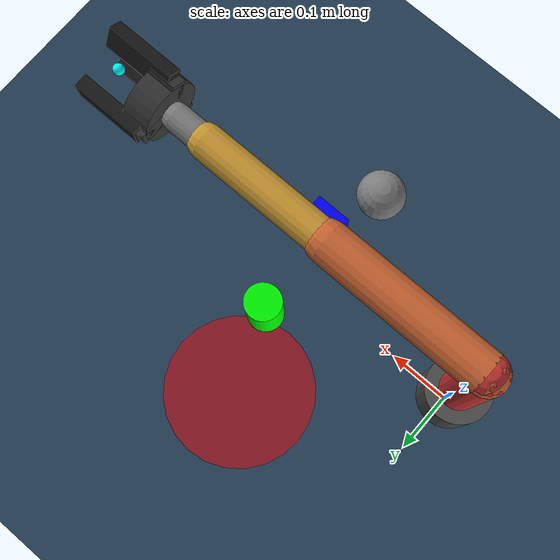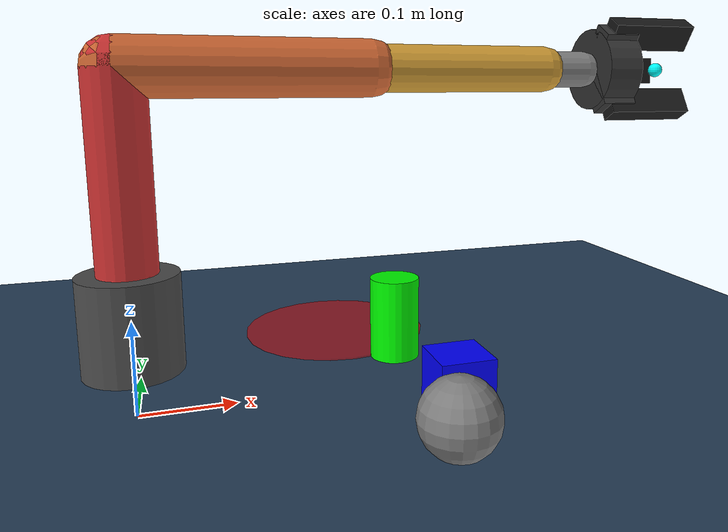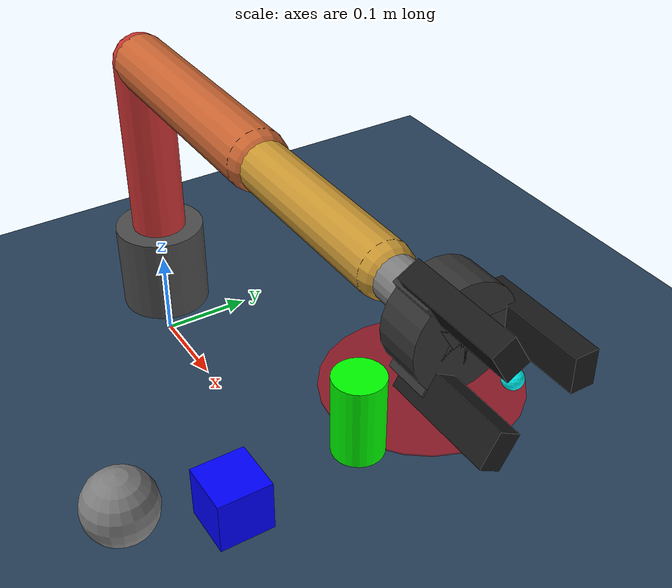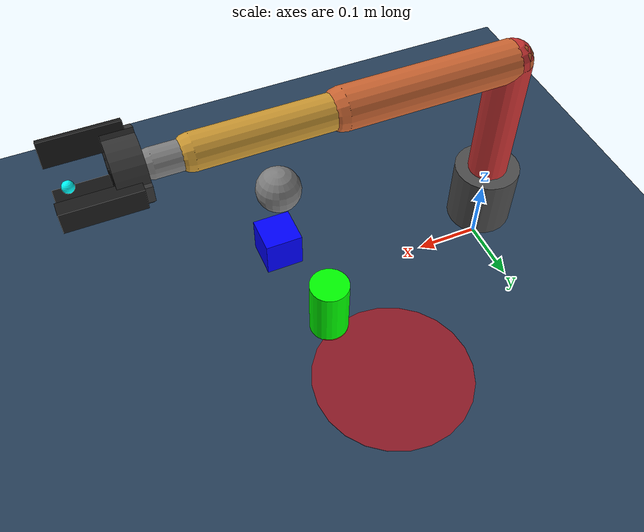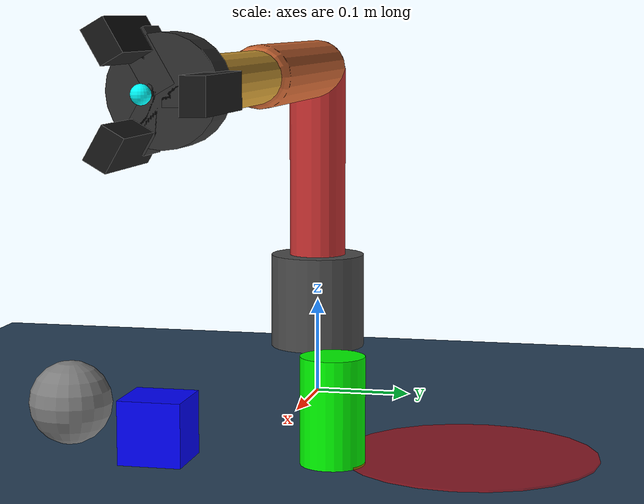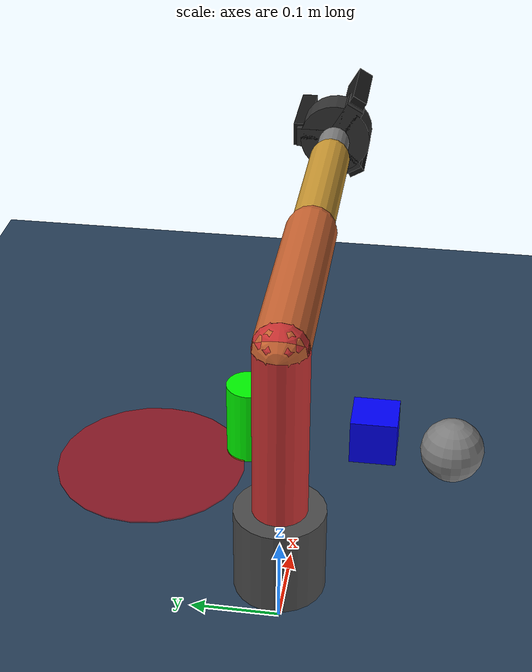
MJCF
<mujoco model="manipulator_scene">
  <compiler angle="degree" coordinate="local" inertiafromgeom="true"/>
  <option gravity="0 0 -9.81" timestep="0.002"/>

  <asset>
    <texture type="skybox" builtin="gradient" rgb1="0.3 0.5 0.7" rgb2="0 0 0" width="512" height="512"/>
    <texture name="grid" type="2d" builtin="checker" rgb1="0.1 0.2 0.3" rgb2="0.2 0.3 0.4" width="512" height="512"/>
    <material name="grid" texture="grid" texrepeat="8 8" reflectance="0.2"/>
  </asset>

  <worldbody>
    <light diffuse="0.8 0.8 0.8" pos="0 0 3" dir="0 0 -1"/>

    <!-- Keep torsional/rolling friction small for numerical stability. -->
    <geom name="floor" type="plane" size="2 2 0.1" material="grid"
          friction="2.0 0.01 0.001"/>

    <!-- Target area -->
    <geom name="target_area" type="cylinder" pos="0.25 0.20 0.001"
          size="0.12 0.001" rgba="1 0 0 0.5"
          contype="0" conaffinity="0"/>

    <!-- Task objects -->
    <body name="stone" pos="0.28 -0.18 0.04">
      <freejoint/>
      <geom name="stone_geom" type="sphere" size="0.04"
            rgba="0.5 0.5 0.5 1" mass="0.05"
            friction="1.5 0.01 0.001"/>
    </body>

    <!-- 6 cm blue cube -->
    <body name="box_obj" pos="0.32 -0.08 0.03">
      <freejoint/>
      <geom name="box_geom" type="box" size="0.03 0.03 0.03"
            rgba="0 0 1 1" mass="0.05"
            friction="2.0 0.01 0.001"/>
    </body>

    <body name="cylinder_obj" pos="0.30 0.08 0.05">
      <freejoint/>
      <geom name="cylinder_geom" type="cylinder" size="0.03 0.05"
            rgba="0 1 0 1" mass="0.05"
            friction="1.5 0.01 0.001"/>
    </body>

    <!-- 4-DOF arm -->
    <body name="base" pos="0 0 0.1">
      <geom name="base_geom" type="cylinder" size="0.05 0.05" rgba="0.3 0.3 0.3 1"/>

      <body name="link1" pos="0 0 0.05">
        <joint name="shoulder_pan" type="hinge" axis="0 0 1" range="-180 180" damping="5" armature="0.05"/>
        <geom name="link1_geom" type="capsule" fromto="0 0 0 0 0 0.2" size="0.03" rgba="0.8 0.2 0.2 1"/>

        <body name="link2" pos="0 0 0.2">
          <joint name="shoulder_lift" type="hinge" axis="0 1 0" range="-90 90" damping="2" armature="0.05"/>
          <geom name="link2_geom" type="capsule" fromto="0 0 0 0.25 0 0" size="0.03" rgba="0.8 0.4 0.2 1"/>

          <body name="link3" pos="0.25 0 0">
            <joint name="elbow" type="hinge" axis="0 1 0" range="-150 150" damping="1.5" armature="0.03"/>
            <geom name="link3_geom" type="capsule" fromto="0 0 0 0.2 0 0" size="0.025" rgba="0.8 0.6 0.2 1"/>

            <body name="wrist" pos="0.2 0 0">
              <joint name="wrist_pitch" type="hinge" axis="0 1 0" range="-90 90" damping="1" armature="0.02"/>
              <geom name="wrist_geom" type="capsule" fromto="0 0 0 0.05 0 0" size="0.02" rgba="0.5 0.5 0.5 1"/>

              <camera name="wrist_cam" mode="targetbody" target="wrist_camera_target"
                      pos="0.08 0 0.08" fovy="75"/>
              <body name="wrist_camera_target" pos="0.30 0 -0.25">
                <geom name="wrist_camera_target_geom" type="sphere" size="0.005"
                      rgba="1 1 1 0" contype="0" conaffinity="0"/>
              </body>

              <!-- 3-prong gripper -->
              <body name="gripper_base" pos="0.08 0 0">
                <geom name="gripper_hub" type="cylinder" pos="0 0 0"
                      size="0.045 0.02" euler="0 90 0" rgba="0.2 0.2 0.2 1"/>

                <geom name="gripper_spoke_1" type="box" pos="0 0.025 0"
                      size="0.02 0.025 0.012" rgba="0.2 0.2 0.2 1"/>
                <geom name="gripper_spoke_2" type="box" pos="0 -0.0125 0.02165"
                      size="0.02 0.025 0.012" euler="-60 0 0" rgba="0.2 0.2 0.2 1"/>
                <geom name="gripper_spoke_3" type="box" pos="0 -0.0125 -0.02165"
                      size="0.02 0.025 0.012" euler="60 0 0" rgba="0.2 0.2 0.2 1"/>

                <site name="gripper_site" pos="0 0 0" size="0.006" rgba="1 0 1 1"/>
                <site name="grasp_site" pos="0.07 0 0" size="0.008" rgba="0 1 1 1"/>

                <body name="finger_1" pos="0.04 0.045 0">
                  <joint name="finger_1_joint" type="slide" axis="0 1 0"
                         range="0 0.025" damping="5" armature="0.01"/>
                  <geom name="finger_1_geom" type="box" size="0.05 0.010 0.015"
                        rgba="0.1 0.1 0.1 1" friction="8.0 0.05 0.01"/>
                </body>

                <body name="finger_2" pos="0.04 -0.0225 0.0390">
                  <joint name="finger_2_joint" type="slide" axis="0 -0.5 0.866"
                         range="0 0.025" damping="5" armature="0.01"/>
                  <geom name="finger_2_geom" type="box" size="0.05 0.010 0.015"
                        euler="30 0 0" rgba="0.1 0.1 0.1 1" friction="8.0 0.05 0.01"/>
                </body>

                <body name="finger_3" pos="0.04 -0.0225 -0.0390">
                  <joint name="finger_3_joint" type="slide" axis="0 -0.5 -0.866"
                         range="0 0.025" damping="5" armature="0.01"/>
                  <geom name="finger_3_geom" type="box" size="0.05 0.010 0.015"
                        euler="-30 0 0" rgba="0.1 0.1 0.1 1" friction="8.0 0.05 0.01"/>
                </body>
              </body>
            </body>
          </body>
        </body>
      </body>
    </body>

    <camera name="overhead_cam" pos="0.4 0.1 1.3" euler="0 0 0" fovy="60"/>
  </worldbody>

  <contact>
    <exclude body1="base" body2="link1"/>
  </contact>

  <actuator>
    <position name="act_shoulder_pan" joint="shoulder_pan" kp="500" kv="50"
              ctrlrange="-3.1416 3.1416" forcerange="-200 200"/>
    <position name="act_shoulder_lift" joint="shoulder_lift" kp="500" kv="50"
              ctrlrange="-1.5708 1.5708" forcerange="-200 200"/>
    <position name="act_elbow" joint="elbow" kp="400" kv="40"
              ctrlrange="-2.618 2.618" forcerange="-150 150"/>
    <position name="act_wrist_pitch" joint="wrist_pitch" kp="250" kv="25"
              ctrlrange="-1.5708 1.5708" forcerange="-100 100"/>

    <position name="act_finger_1" joint="finger_1_joint" kp="200" kv="10"
              ctrlrange="0 0.025" forcerange="-50 50"/>
    <position name="act_finger_2" joint="finger_2_joint" kp="200" kv="10"
              ctrlrange="0 0.025" forcerange="-50 50"/>
    <position name="act_finger_3" joint="finger_3_joint" kp="200" kv="10"
              ctrlrange="0 0.025" forcerange="-50 50"/>
  </actuator>
</mujoco>
